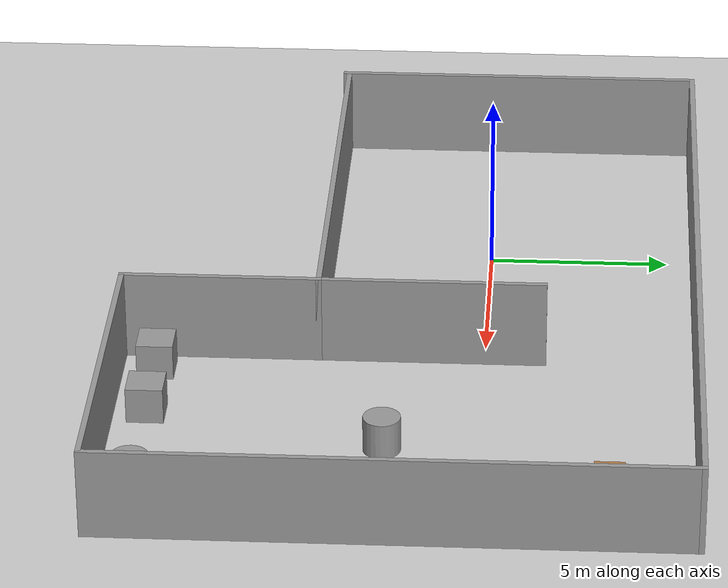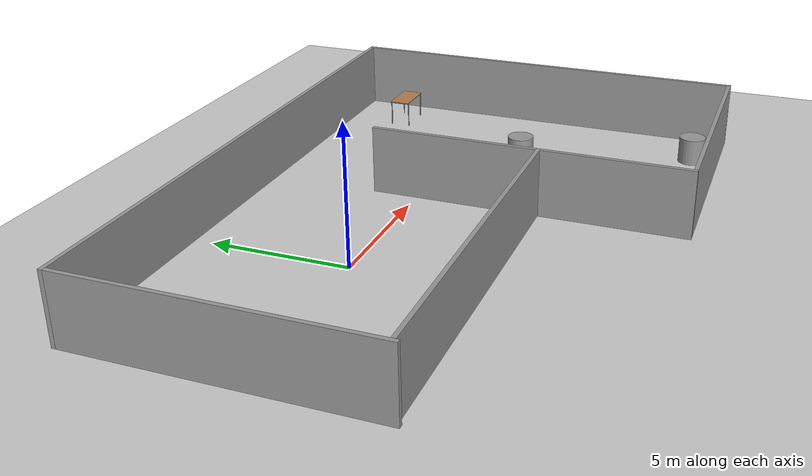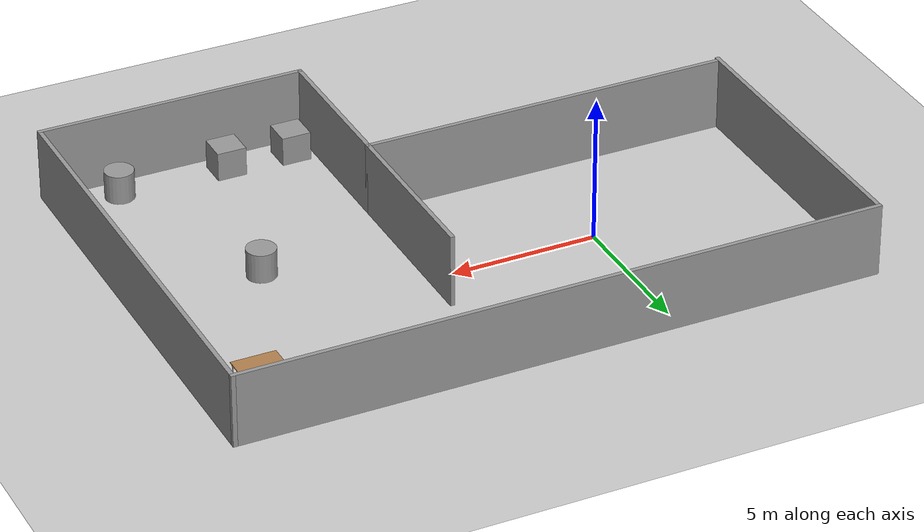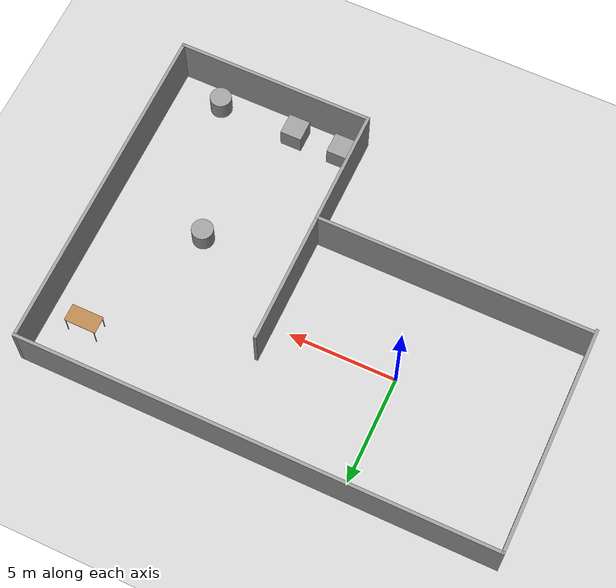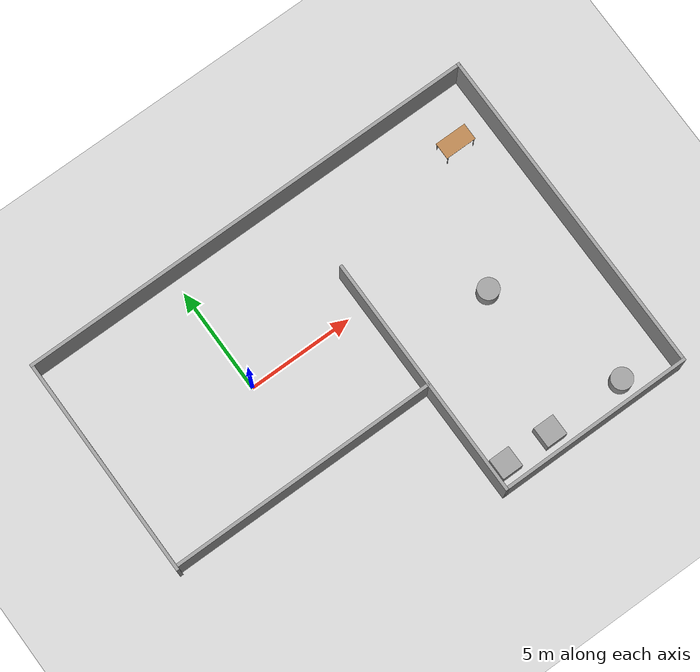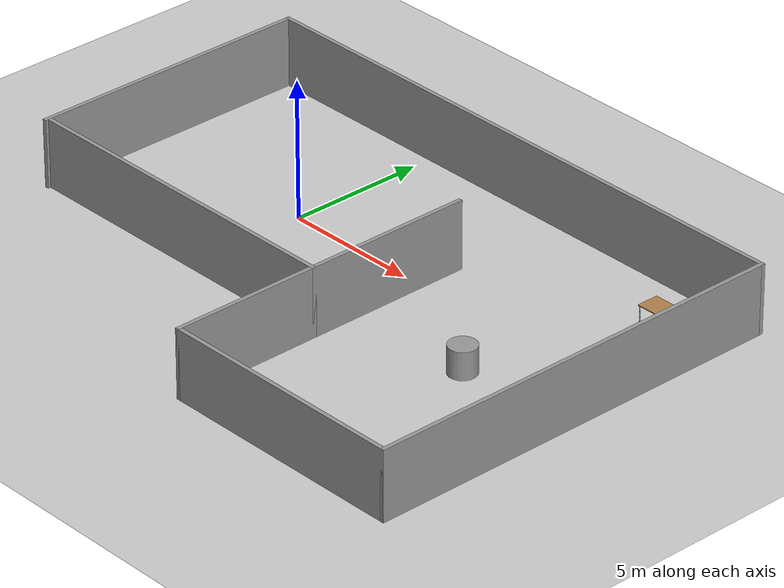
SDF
<sdf version="1.6">
 <world name="default">
  <light name="sun" type="directional">
   <pose>0 0 10 0 -0 0</pose>
   <diffuse>0.8 0.8 0.8 1</diffuse>
   <specular>0.2 0.2 0.2 1</specular>
   <attenuation>
    <range>1000</range>
    <constant>0.9</constant>
    <linear>0.01</linear>
    <quadratic>0.001</quadratic>
   </attenuation>
   <direction>-0.5 0.1 -0.9</direction>
  </light>
  <model name="ground_plane">
   <static>1</static>
   <link name="link">
    <collision name="collision">
     <geometry><plane><normal>0 0 1</normal><size>100 100</size></plane></geometry>
     <surface>
      <contact><collide_bitmask>65535</collide_bitmask></contact>
      <friction><ode><mu>100</mu><mu2>50</mu2></ode></friction>
     </surface>
    </collision>
    <visual name="visual">
     <cast_shadows>0</cast_shadows>
     <geometry><plane><normal>0 0 1</normal><size>100 100</size></plane></geometry>
     <material>
      <script><uri>file://media/materials/scripts/gazebo.material</uri><name>Gazebo/Grey</name></script>
     </material>
    </visual>
   </link>
  </model>
  <gravity>0 0 -9.8</gravity>
  <magnetic_field>6e-06 2.3e-05 -4.2e-05</magnetic_field>
  <atmosphere type="adiabatic"/>
  <physics name="default_physics" default="0" type="ode">
   <max_step_size>0.001</max_step_size>
   <real_time_factor>1</real_time_factor>
   <real_time_update_rate>1000</real_time_update_rate>
  </physics>
  <scene><ambient>0.4 0.4 0.4 1</ambient><background>0.7 0.7 0.7 1</background><shadows>1</shadows></scene>
  <audio><device>default</device></audio>
  <spherical_coordinates>
   <surface_model>EARTH_WGS84</surface_model>
   <latitude_deg>0</latitude_deg>
   <longitude_deg>0</longitude_deg>
   <elevation>0</elevation>
   <heading_deg>0</heading_deg>
  </spherical_coordinates>
  <model name="simple_wall">
   <pose>3.96133 -2.06043 0 0 -0 0</pose>
   <link name="Wall_21">
    <collision name="Wall_21_Collision">
     <geometry><box><size>12.75 0.15 2.5</size></box></geometry>
     <pose>0 0 1.25 0 -0 0</pose>
    </collision>
    <visual name="Wall_21_Visual">
     <pose>0 0 1.25 0 -0 0</pose>
     <geometry><box><size>12.75 0.15 2.5</size></box></geometry>
     <material>
      <script><uri>file://media/materials/scripts/gazebo.material</uri><name>Gazebo/Grey</name></script>
      <ambient>1 1 1 1</ambient>
     </material>
     <meta><layer>0</layer></meta>
    </visual>
    <pose>-4.475 -2.45 0 0 -0 0</pose>
   </link>
   <link name="Wall_22">
    <collision name="Wall_22_Collision">
     <geometry><box><size>6.25 0.15 2.5</size></box></geometry>
     <pose>0 0 1.25 0 -0 0</pose>
    </collision>
    <visual name="Wall_22_Visual">
     <pose>0 0 1.25 0 -0 0</pose>
     <geometry><box><size>6.25 0.15 2.5</size></box></geometry>
     <material>
      <script><uri>file://media/materials/scripts/gazebo.material</uri><name>Gazebo/Grey</name></script>
      <ambient>1 1 1 1</ambient>
     </material>
     <meta><layer>0</layer></meta>
    </visual>
    <pose>1.825 0.6 0 0 -0 1.5708</pose>
   </link>
   <link name="Wall_24">
    <collision name="Wall_24_Collision">
     <geometry><box><size>5.5 0.15 2.5</size></box></geometry>
     <pose>0 0 1.25 0 -0 0</pose>
    </collision>
    <visual name="Wall_24_Visual">
     <pose>0 0 1.25 0 -0 0</pose>
     <geometry><box><size>5.5 0.15 2.5</size></box></geometry>
     <material>
      <script><uri>file://media/materials/scripts/gazebo.material</uri><name>Gazebo/Grey</name></script>
      <ambient>1 1 1 1</ambient>
     </material>
     <meta><layer>0</layer></meta>
    </visual>
    <pose>1.825 -5.125 0 0 -0 -1.5708</pose>
   </link>
   <link name="Wall_25">
    <collision name="Wall_25_Collision">
     <geometry><box><size>9.25 0.15 2.5</size></box></geometry>
     <pose>0 0 1.25 0 -0 0</pose>
    </collision>
    <visual name="Wall_25_Visual">
     <pose>0 0 1.25 0 -0 0</pose>
     <geometry><box><size>9.25 0.15 2.5</size></box></geometry>
     <material>
      <script><uri>file://media/materials/scripts/gazebo.material</uri><name>Gazebo/Grey</name></script>
      <ambient>1 1 1 1</ambient>
     </material>
     <meta><layer>0</layer></meta>
    </visual>
    <pose>6.375 -7.8 0 0 -0 0</pose>
   </link>
   <link name="Wall_26">
    <collision name="Wall_26_Collision">
     <geometry><box><size>15.75 0.15 2.5</size></box></geometry>
     <pose>0 0 1.25 0 -0 0</pose>
    </collision>
    <visual name="Wall_26_Visual">
     <pose>0 0 1.25 0 -0 0</pose>
     <geometry><box><size>15.75 0.15 2.5</size></box></geometry>
     <material>
      <script><uri>file://media/materials/scripts/gazebo.material</uri><name>Gazebo/Grey</name></script>
      <ambient>1 1 1 1</ambient>
     </material>
     <meta><layer>0</layer></meta>
    </visual>
    <pose>10.925 -0 0 0 -0 1.5708</pose>
   </link>
   <link name="Wall_27">
    <collision name="Wall_27_Collision">
     <geometry><box><size>22 0.15 2.5</size></box></geometry>
     <pose>0 0 1.25 0 -0 0</pose>
    </collision>
    <visual name="Wall_27_Visual">
     <pose>0 0 1.25 0 -0 0</pose>
     <geometry><box><size>22 0.15 2.5</size></box></geometry>
     <material>
      <script><uri>file://media/materials/scripts/gazebo.material</uri><name>Gazebo/Grey</name></script>
      <ambient>1 1 1 1</ambient>
     </material>
     <meta><layer>0</layer></meta>
    </visual>
    <pose>0 7.8 0 0 -0 3.14159</pose>
   </link>
   <link name="Wall_28">
    <collision name="Wall_28_Collision">
     <geometry><box><size>10.5 0.15 2.5</size></box></geometry>
     <pose>0 0 1.25 0 -0 0</pose>
    </collision>
    <visual name="Wall_28_Visual">
     <pose>0 0 1.25 0 -0 0</pose>
     <geometry><box><size>10.5 0.15 2.5</size></box></geometry>
     <material>
      <script><uri>file://media/materials/scripts/gazebo.material</uri><name>Gazebo/Grey</name></script>
      <ambient>1 1 1 1</ambient>
     </material>
     <meta><layer>0</layer></meta>
    </visual>
    <pose>-10.925 2.625 0 0 -0 -1.5708</pose>
   </link>
   <static>1</static>
  </model>
  <model name="unit_box">
   <pose>6.59538 -8.88021 0.499995 -1e-05 -0 -0</pose>
   <link name="link">
    <inertial>
     <mass>1</mass>
     <inertia>
      <ixx>0.166667</ixx>
      <ixy>0</ixy>
      <ixz>0</ixz>
      <iyy>0.166667</iyy>
      <iyz>0</iyz>
      <izz>0.166667</izz>
     </inertia>
    </inertial>
    <collision name="collision"><geometry><box><size>1 1 1</size></box></geometry></collision>
    <visual name="visual">
     <geometry><box><size>1 1 1</size></box></geometry>
     <material>
      <script><name>Gazebo/Grey</name><uri>file://media/materials/scripts/gazebo.material</uri></script>
     </material>
    </visual>
   </link>
  </model>
  <model name="unit_box_0">
   <pose>8.88238 -8.89679 0.499995 0 1e-05 0</pose>
   <link name="link">
    <inertial>
     <mass>1</mass>
     <inertia>
      <ixx>0.166667</ixx>
      <ixy>0</ixy>
      <ixz>0</ixz>
      <iyy>0.166667</iyy>
      <iyz>0</iyz>
      <izz>0.166667</izz>
     </inertia>
    </inertial>
    <collision name="collision"><geometry><box><size>1 1 1</size></box></geometry></collision>
    <visual name="visual">
     <geometry><box><size>1 1 1</size></box></geometry>
     <material>
      <script><name>Gazebo/Grey</name><uri>file://media/materials/scripts/gazebo.material</uri></script>
     </material>
    </visual>
   </link>
  </model>
  <model name="unit_cylinder">
   <pose>12.6252 -8.89137 0.499993 -3e-06 -3e-06 0</pose>
   <link name="link">
    <inertial>
     <mass>1</mass>
     <inertia><ixx>0.145833</ixx><ixy>0</ixy><ixz>0</ixz><iyy>0.145833</iyy><iyz>0</iyz><izz>0.125</izz></inertia>
    </inertial>
    <collision name="collision">
     <geometry><cylinder><radius>0.5</radius><length>1</length></cylinder></geometry>
    </collision>
    <visual name="visual">
     <geometry><cylinder><radius>0.5</radius><length>1</length></cylinder></geometry>
     <material>
      <script><name>Gazebo/Grey</name><uri>file://media/materials/scripts/gazebo.material</uri></script>
     </material>
    </visual>
   </link>
  </model>
  <model name="table">
   <static>1</static>
   <link name="link">
    <collision name="surface">
     <pose>0 0 1 0 -0 0</pose>
     <geometry><box><size>1.5 0.8 0.03</size></box></geometry>
     <surface><friction><ode><mu>0.6</mu><mu2>0.6</mu2></ode></friction></surface>
    </collision>
    <visual name="visual1">
     <pose>0 0 1 0 -0 0</pose>
     <geometry><box><size>1.5 0.8 0.03</size></box></geometry>
     <material>
      <script><uri>file://media/materials/scripts/gazebo.material</uri><name>Gazebo/Wood</name></script>
     </material>
    </visual>
    <collision name="front_left_leg">
     <pose>0.68 0.38 0.5 0 -0 0</pose>
     <geometry><cylinder><radius>0.02</radius><length>1</length></cylinder></geometry>
    </collision>
    <visual name="front_left_leg">
     <pose>0.68 0.38 0.5 0 -0 0</pose>
     <geometry><cylinder><radius>0.02</radius><length>1</length></cylinder></geometry>
     <material>
      <script><uri>file://media/materials/scripts/gazebo.material</uri><name>Gazebo/Grey</name></script>
     </material>
    </visual>
    <collision name="front_right_leg">
     <pose>0.68 -0.38 0.5 0 -0 0</pose>
     <geometry><cylinder><radius>0.02</radius><length>1</length></cylinder></geometry>
    </collision>
    <visual name="front_right_leg">
     <pose>0.68 -0.38 0.5 0 -0 0</pose>
     <geometry><cylinder><radius>0.02</radius><length>1</length></cylinder></geometry>
     <material>
      <script><uri>file://media/materials/scripts/gazebo.material</uri><name>Gazebo/Grey</name></script>
     </material>
    </visual>
    <collision name="back_right_leg">
     <pose>-0.68 -0.38 0.5 0 -0 0</pose>
     <geometry><cylinder><radius>0.02</radius><length>1</length></cylinder></geometry>
    </collision>
    <visual name="back_right_leg">
     <pose>-0.68 -0.38 0.5 0 -0 0</pose>
     <geometry><cylinder><radius>0.02</radius><length>1</length></cylinder></geometry>
     <material>
      <script><uri>file://media/materials/scripts/gazebo.material</uri><name>Gazebo/Grey</name></script>
     </material>
    </visual>
    <collision name="back_left_leg">
     <pose>-0.68 0.38 0.5 0 -0 0</pose>
     <geometry><cylinder><radius>0.02</radius><length>1</length></cylinder></geometry>
    </collision>
    <visual name="back_left_leg">
     <pose>-0.68 0.38 0.5 0 -0 0</pose>
     <geometry><cylinder><radius>0.02</radius><length>1</length></cylinder></geometry>
     <material>
      <script><uri>file://media/materials/scripts/gazebo.material</uri><name>Gazebo/Grey</name></script>
     </material>
    </visual>
   </link>
   <pose>13.0811 3.40628 0 0 -0 0</pose>
  </model>
  <model name="unit_cylinder_0">
   <pose>10.3999 -2.54294 0.499997 3e-06 4e-06 -0</pose>
   <link name="link">
    <inertial>
     <mass>1</mass>
     <inertia><ixx>0.145833</ixx><ixy>0</ixy><ixz>0</ixz><iyy>0.145833</iyy><iyz>0</iyz><izz>0.125</izz></inertia>
    </inertial>
    <collision name="collision">
     <geometry><cylinder><radius>0.5</radius><length>1</length></cylinder></geometry>
    </collision>
    <visual name="visual">
     <geometry><cylinder><radius>0.5</radius><length>1</length></cylinder></geometry>
     <material>
      <script><name>Gazebo/Grey</name><uri>file://media/materials/scripts/gazebo.material</uri></script>
     </material>
    </visual>
   </link>
  </model>
 </world>
</sdf>
